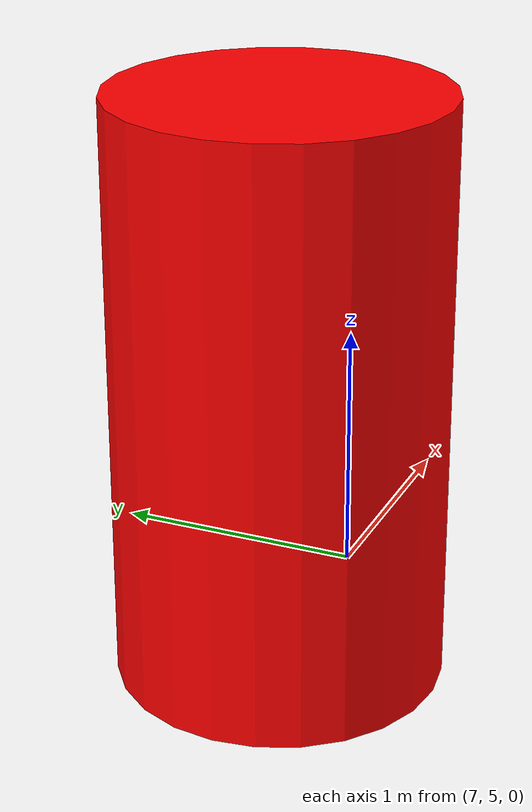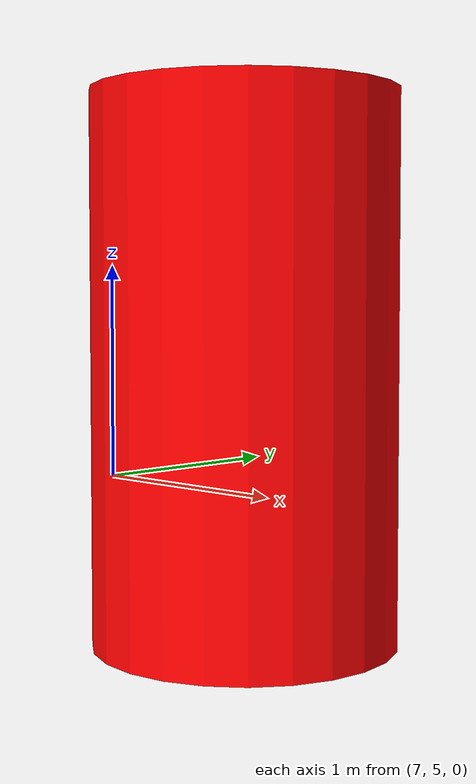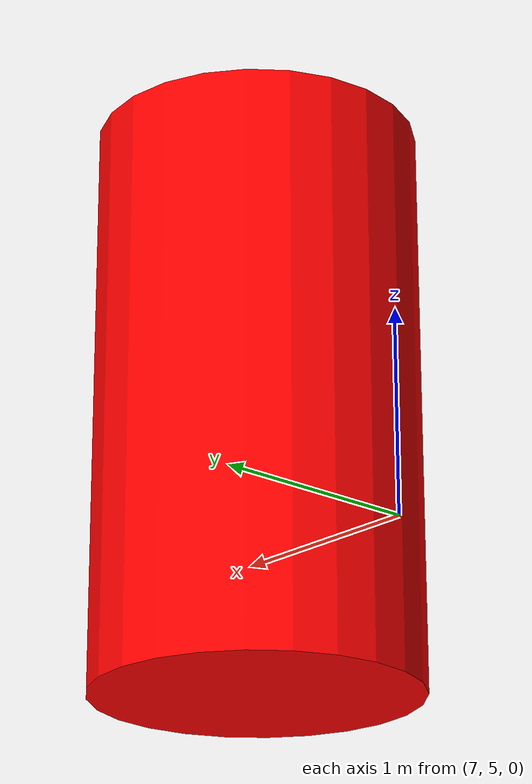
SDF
<sdf version='1.6'>
    <model name='cyl_15'>
      <pose>7.41 5.48 0.5 0 -0 0</pose>
      <link name='cylinder_link'>
        <inertial>
          <inertia>
            <ixx>0.14580000000000001</ixx>
            <ixy>0</ixy>
            <ixz>0</ixz>
            <iyy>0.14580000000000001</iyy>
            <iyz>0</iyz>
            <izz>0.125</izz>
          </inertia>
          <mass>1</mass>
          <pose>0 0 0 0 -0 0</pose>
        </inertial>
        <collision name='cylinder_collision'>
          <geometry>
            <cylinder>
              <radius>0.74</radius>
              <length>2.65</length>
            </cylinder>
          </geometry>
          <surface>
            <friction>
              <ode/>
            </friction>
            <bounce/>
            <contact/>
          </surface>
        </collision>
        <visual name='cylinder_visual'>
          <geometry>
            <cylinder>
              <radius>0.74</radius>
              <length>2.65</length>
            </cylinder>
          </geometry>
          <material>
            <ambient>1 0 0 1</ambient>
            <diffuse>1 0 0 1</diffuse>
            <specular>1 0 0 1</specular>
          </material>
        </visual>
        <pose>0 0 0 0 -0 0</pose>
        <enable_wind>false</enable_wind>
      </link>
      <static>false</static>
      <self_collide>false</self_collide>
    </model>
    </sdf>
